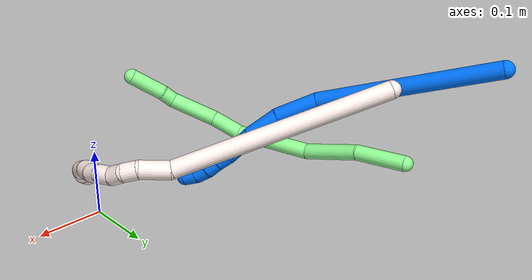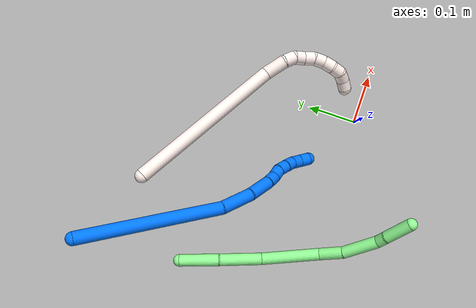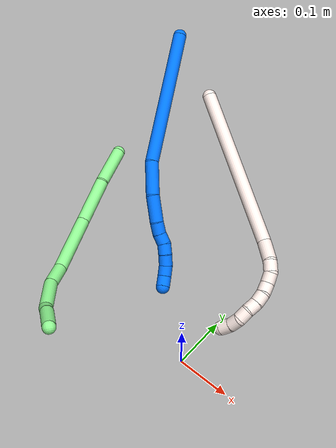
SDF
<sdf version="1.7">
 <world name="default">
  <model name="11">
   <static>0</static>
   <link name="11">
    <collision name="collision-cylinder-e_1_1_4">
     <pose>0.043744 -0.019193 -0.140649 3.00597 0.298929 2.29422</pose>
     <geometry><cylinder><radius>0.0125</radius><length>0.297079</length></cylinder></geometry>
     <surface>
      <friction><ode><mu>1.16</mu><mu2>1.16</mu2><slip1>0</slip1><slip2>0</slip2></ode></friction>
      <contact><ode><kp>1e+06</kp><kd>1</kd><max_vel>0</max_vel><min_depth>0.001</min_depth></ode></contact>
     </surface>
    </collision>
    <visual name="visual-cylinder-e_1_1_4">
     <pose>0.043744 -0.019193 -0.140649 3.00597 0.298929 2.29422</pose>
     <geometry><cylinder><radius>0.0125</radius><length>0.297079</length></cylinder></geometry>
     <material><ambient>1 0.933333 0.909804 1</ambient></material>
    </visual>
    <collision name="collision-cylinder-e_2_4_5">
     <pose>0.100006 -0.041512 -0.297328 2.94901 0.653916 2.58665</pose>
     <geometry><cylinder><radius>0.0125</radius><length>0.041157</length></cylinder></geometry>
     <surface>
      <friction><ode><mu>1.16</mu><mu2>1.16</mu2><slip1>0</slip1><slip2>0</slip2></ode></friction>
      <contact><ode><kp>1e+06</kp><kd>1</kd><max_vel>0</max_vel><min_depth>0.001</min_depth></ode></contact>
     </surface>
    </collision>
    <visual name="visual-cylinder-e_2_4_5">
     <pose>0.100006 -0.041512 -0.297328 2.94901 0.653916 2.58665</pose>
     <geometry><cylinder><radius>0.0125</radius><length>0.041157</length></cylinder></geometry>
     <material><ambient>1 0.933333 0.909804 1</ambient></material>
    </visual>
    <collision name="collision-cylinder-e_3_5_6">
     <pose>0.116516 -0.04866 -0.32228 2.71801 0.387345 1.479</pose>
     <geometry><cylinder><radius>0.0125</radius><length>0.021137</length></cylinder></geometry>
     <surface>
      <friction><ode><mu>1.16</mu><mu2>1.16</mu2><slip1>0</slip1><slip2>0</slip2></ode></friction>
      <contact><ode><kp>1e+06</kp><kd>1</kd><max_vel>0</max_vel><min_depth>0.001</min_depth></ode></contact>
     </surface>
    </collision>
    <visual name="visual-cylinder-e_3_5_6">
     <pose>0.116516 -0.04866 -0.32228 2.71801 0.387345 1.479</pose>
     <geometry><cylinder><radius>0.0125</radius><length>0.021137</length></cylinder></geometry>
     <material><ambient>1 0.933333 0.909804 1</ambient></material>
    </visual>
    <collision name="collision-cylinder-e_4_6_7">
     <pose>0.122316 -0.05999 -0.337997 2.3199 0.179249 0.40686</pose>
     <geometry><cylinder><radius>0.0125</radius><length>0.020284</length></cylinder></geometry>
     <surface>
      <friction><ode><mu>1.16</mu><mu2>1.16</mu2><slip1>0</slip1><slip2>0</slip2></ode></friction>
      <contact><ode><kp>1e+06</kp><kd>1</kd><max_vel>0</max_vel><min_depth>0.001</min_depth></ode></contact>
     </surface>
    </collision>
    <visual name="visual-cylinder-e_4_6_7">
     <pose>0.122316 -0.05999 -0.337997 2.3199 0.179249 0.40686</pose>
     <geometry><cylinder><radius>0.0125</radius><length>0.020284</length></cylinder></geometry>
     <material><ambient>1 0.933333 0.909804 1</ambient></material>
    </visual>
    <collision name="collision-cylinder-e_5_7_8">
     <pose>0.129218 -0.07414 -0.350201 2.23968 0.528529 1.01916</pose>
     <geometry><cylinder><radius>0.0125</radius><length>0.020199</length></cylinder></geometry>
     <surface>
      <friction><ode><mu>1.16</mu><mu2>1.16</mu2><slip1>0</slip1><slip2>0</slip2></ode></friction>
      <contact><ode><kp>1e+06</kp><kd>1</kd><max_vel>0</max_vel><min_depth>0.001</min_depth></ode></contact>
     </surface>
    </collision>
    <visual name="visual-cylinder-e_5_7_8">
     <pose>0.129218 -0.07414 -0.350201 2.23968 0.528529 1.01916</pose>
     <geometry><cylinder><radius>0.0125</radius><length>0.020199</length></cylinder></geometry>
     <material><ambient>1 0.933333 0.909804 1</ambient></material>
    </visual>
    <collision name="collision-cylinder-e_6_8_9">
     <pose>0.137185 -0.089695 -0.359697 2.00954 0.290264 0.452208</pose>
     <geometry><cylinder><radius>0.0125</radius><length>0.020088</length></cylinder></geometry>
     <surface>
      <friction><ode><mu>1.16</mu><mu2>1.16</mu2><slip1>0</slip1><slip2>0</slip2></ode></friction>
      <contact><ode><kp>1e+06</kp><kd>1</kd><max_vel>0</max_vel><min_depth>0.001</min_depth></ode></contact>
     </surface>
    </collision>
    <visual name="visual-cylinder-e_6_8_9">
     <pose>0.137185 -0.089695 -0.359697 2.00954 0.290264 0.452208</pose>
     <geometry><cylinder><radius>0.0125</radius><length>0.020088</length></cylinder></geometry>
     <material><ambient>1 0.933333 0.909804 1</ambient></material>
    </visual>
    <collision name="collision-cylinder-e_7_9_10">
     <pose>0.14307 -0.107778 -0.365629 1.76505 0.305371 0.369938</pose>
     <geometry><cylinder><radius>0.0125</radius><length>0.020027</length></cylinder></geometry>
     <surface>
      <friction><ode><mu>1.16</mu><mu2>1.16</mu2><slip1>0</slip1><slip2>0</slip2></ode></friction>
      <contact><ode><kp>1e+06</kp><kd>1</kd><max_vel>0</max_vel><min_depth>0.001</min_depth></ode></contact>
     </surface>
    </collision>
    <visual name="visual-cylinder-e_7_9_10">
     <pose>0.14307 -0.107778 -0.365629 1.76505 0.305371 0.369938</pose>
     <geometry><cylinder><radius>0.0125</radius><length>0.020027</length></cylinder></geometry>
     <material><ambient>1 0.933333 0.909804 1</ambient></material>
    </visual>
    <collision name="collision-cylinder-e_8_10_11">
     <pose>0.14645 -0.126705 -0.370404 1.86837 0.036939 0.04996</pose>
     <geometry><cylinder><radius>0.0125</radius><length>0.020005</length></cylinder></geometry>
     <surface>
      <friction><ode><mu>1.16</mu><mu2>1.16</mu2><slip1>0</slip1><slip2>0</slip2></ode></friction>
      <contact><ode><kp>1e+06</kp><kd>1</kd><max_vel>0</max_vel><min_depth>0.001</min_depth></ode></contact>
     </surface>
    </collision>
    <visual name="visual-cylinder-e_8_10_11">
     <pose>0.14645 -0.126705 -0.370404 1.86837 0.036939 0.04996</pose>
     <geometry><cylinder><radius>0.0125</radius><length>0.020005</length></cylinder></geometry>
     <material><ambient>1 0.933333 0.909804 1</ambient></material>
    </visual>
    <collision name="collision-cylinder-e_9_11_12">
     <pose>0.142863 -0.145375 -0.374485 1.69633 -0.406709 -0.459469</pose>
     <geometry><cylinder><radius>0.0125</radius><length>0.020005</length></cylinder></geometry>
     <surface>
      <friction><ode><mu>1.16</mu><mu2>1.16</mu2><slip1>0</slip1><slip2>0</slip2></ode></friction>
      <contact><ode><kp>1e+06</kp><kd>1</kd><max_vel>0</max_vel><min_depth>0.001</min_depth></ode></contact>
     </surface>
    </collision>
    <visual name="visual-cylinder-e_9_11_12">
     <pose>0.142863 -0.145375 -0.374485 1.69633 -0.406709 -0.459469</pose>
     <geometry><cylinder><radius>0.0125</radius><length>0.020005</length></cylinder></geometry>
     <material><ambient>1 0.933333 0.909804 1</ambient></material>
    </visual>
    <collision name="collision-cylinder-e_10_12_2">
     <pose>0.135041 -0.163645 -0.374436 1.44056 -0.396368 -0.348883</pose>
     <geometry><cylinder><radius>0.0125</radius><length>0.020019</length></cylinder></geometry>
     <surface>
      <friction><ode><mu>1.16</mu><mu2>1.16</mu2><slip1>0</slip1><slip2>0</slip2></ode></friction>
      <contact><ode><kp>1e+06</kp><kd>1</kd><max_vel>0</max_vel><min_depth>0.001</min_depth></ode></contact>
     </surface>
    </collision>
    <visual name="visual-cylinder-e_10_12_2">
     <pose>0.135041 -0.163645 -0.374436 1.44056 -0.396368 -0.348883</pose>
     <geometry><cylinder><radius>0.0125</radius><length>0.020019</length></cylinder></geometry>
     <material><ambient>1 0.933333 0.909804 1</ambient></material>
    </visual>
    <collision name="collision-sphere-2">
     <pose>0.131177 -0.172801 -0.373236 0 -0 0</pose>
     <geometry><sphere><radius>0.0125</radius></sphere></geometry>
     <surface>
      <friction><ode><mu>1.16</mu><mu2>1.16</mu2><slip1>0</slip1><slip2>0</slip2></ode></friction>
      <contact><ode><kp>1e+06</kp><kd>1</kd><max_vel>0</max_vel><min_depth>0.001</min_depth></ode></contact>
     </surface>
    </collision>
    <visual name="visual-sphere-2">
     <pose>0.131177 -0.172801 -0.373236 0 -0 0</pose>
     <geometry><sphere><radius>0.0125</radius></sphere></geometry>
     <material><ambient>1 0.933333 0.909804 1</ambient></material>
    </visual>
    <collision name="collision-sphere-12">
     <pose>0.138906 -0.15449 -0.375635 0 -0 0</pose>
     <geometry><sphere><radius>0.0125</radius></sphere></geometry>
     <surface>
      <friction><ode><mu>1.16</mu><mu2>1.16</mu2><slip1>0</slip1><slip2>0</slip2></ode></friction>
      <contact><ode><kp>1e+06</kp><kd>1</kd><max_vel>0</max_vel><min_depth>0.001</min_depth></ode></contact>
     </surface>
    </collision>
    <visual name="visual-sphere-12">
     <pose>0.138906 -0.15449 -0.375635 0 -0 0</pose>
     <geometry><sphere><radius>0.0125</radius></sphere></geometry>
     <material><ambient>1 0.933333 0.909804 1</ambient></material>
    </visual>
    <collision name="collision-sphere-11">
     <pose>0.14682 -0.136261 -0.373334 0 -0 0</pose>
     <geometry><sphere><radius>0.0125</radius></sphere></geometry>
     <surface>
      <friction><ode><mu>1.16</mu><mu2>1.16</mu2><slip1>0</slip1><slip2>0</slip2></ode></friction>
      <contact><ode><kp>1e+06</kp><kd>1</kd><max_vel>0</max_vel><min_depth>0.001</min_depth></ode></contact>
     </surface>
    </collision>
    <visual name="visual-sphere-11">
     <pose>0.14682 -0.136261 -0.373334 0 -0 0</pose>
     <geometry><sphere><radius>0.0125</radius></sphere></geometry>
     <material><ambient>1 0.933333 0.909804 1</ambient></material>
    </visual>
    <collision name="collision-sphere-10">
     <pose>0.146081 -0.117148 -0.367473 0 -0 0</pose>
     <geometry><sphere><radius>0.0125</radius></sphere></geometry>
     <surface>
      <friction><ode><mu>1.16</mu><mu2>1.16</mu2><slip1>0</slip1><slip2>0</slip2></ode></friction>
      <contact><ode><kp>1e+06</kp><kd>1</kd><max_vel>0</max_vel><min_depth>0.001</min_depth></ode></contact>
     </surface>
    </collision>
    <visual name="visual-sphere-10">
     <pose>0.146081 -0.117148 -0.367473 0 -0 0</pose>
     <geometry><sphere><radius>0.0125</radius></sphere></geometry>
     <material><ambient>1 0.933333 0.909804 1</ambient></material>
    </visual>
    <collision name="collision-sphere-9">
     <pose>0.14006 -0.098407 -0.363786 0 -0 0</pose>
     <geometry><sphere><radius>0.0125</radius></sphere></geometry>
     <surface>
      <friction><ode><mu>1.16</mu><mu2>1.16</mu2><slip1>0</slip1><slip2>0</slip2></ode></friction>
      <contact><ode><kp>1e+06</kp><kd>1</kd><max_vel>0</max_vel><min_depth>0.001</min_depth></ode></contact>
     </surface>
    </collision>
    <visual name="visual-sphere-9">
     <pose>0.14006 -0.098407 -0.363786 0 -0 0</pose>
     <geometry><sphere><radius>0.0125</radius></sphere></geometry>
     <material><ambient>1 0.933333 0.909804 1</ambient></material>
    </visual>
    <collision name="collision-sphere-4">
     <pose>0.087489 -0.038386 -0.281297 0 -0 0</pose>
     <geometry><sphere><radius>0.0125</radius></sphere></geometry>
     <surface>
      <friction><ode><mu>1.16</mu><mu2>1.16</mu2><slip1>0</slip1><slip2>0</slip2></ode></friction>
      <contact><ode><kp>1e+06</kp><kd>1</kd><max_vel>0</max_vel><min_depth>0.001</min_depth></ode></contact>
     </surface>
    </collision>
    <visual name="visual-sphere-4">
     <pose>0.087489 -0.038386 -0.281297 0 -0 0</pose>
     <geometry><sphere><radius>0.0125</radius></sphere></geometry>
     <material><ambient>1 0.933333 0.909804 1</ambient></material>
    </visual>
    <collision name="collision-sphere-1">
     <geometry><sphere><radius>0.0125</radius></sphere></geometry>
     <surface>
      <friction><ode><mu>1.16</mu><mu2>1.16</mu2><slip1>0</slip1><slip2>0</slip2></ode></friction>
      <contact><ode><kp>1e+06</kp><kd>1</kd><max_vel>0</max_vel><min_depth>0.001</min_depth></ode></contact>
     </surface>
    </collision>
    <visual name="visual-sphere-1">
     <geometry><sphere><radius>0.0125</radius></sphere></geometry>
     <material><ambient>1 0.933333 0.909804 1</ambient></material>
    </visual>
    <collision name="collision-sphere-8">
     <pose>0.13431 -0.080983 -0.355609 0 -0 0</pose>
     <geometry><sphere><radius>0.0125</radius></sphere></geometry>
     <surface>
      <friction><ode><mu>1.16</mu><mu2>1.16</mu2><slip1>0</slip1><slip2>0</slip2></ode></friction>
      <contact><ode><kp>1e+06</kp><kd>1</kd><max_vel>0</max_vel><min_depth>0.001</min_depth></ode></contact>
     </surface>
    </collision>
    <visual name="visual-sphere-8">
     <pose>0.13431 -0.080983 -0.355609 0 -0 0</pose>
     <geometry><sphere><radius>0.0125</radius></sphere></geometry>
     <material><ambient>1 0.933333 0.909804 1</ambient></material>
    </visual>
    <collision name="collision-sphere-5">
     <pose>0.112524 -0.044638 -0.31336 0 -0 0</pose>
     <geometry><sphere><radius>0.0125</radius></sphere></geometry>
     <surface>
      <friction><ode><mu>1.16</mu><mu2>1.16</mu2><slip1>0</slip1><slip2>0</slip2></ode></friction>
      <contact><ode><kp>1e+06</kp><kd>1</kd><max_vel>0</max_vel><min_depth>0.001</min_depth></ode></contact>
     </surface>
    </collision>
    <visual name="visual-sphere-5">
     <pose>0.112524 -0.044638 -0.31336 0 -0 0</pose>
     <geometry><sphere><radius>0.0125</radius></sphere></geometry>
     <material><ambient>1 0.933333 0.909804 1</ambient></material>
    </visual>
    <collision name="collision-sphere-6">
     <pose>0.120508 -0.052682 -0.331201 0 -0 0</pose>
     <geometry><sphere><radius>0.0125</radius></sphere></geometry>
     <surface>
      <friction><ode><mu>1.16</mu><mu2>1.16</mu2><slip1>0</slip1><slip2>0</slip2></ode></friction>
      <contact><ode><kp>1e+06</kp><kd>1</kd><max_vel>0</max_vel><min_depth>0.001</min_depth></ode></contact>
     </surface>
    </collision>
    <visual name="visual-sphere-6">
     <pose>0.120508 -0.052682 -0.331201 0 -0 0</pose>
     <geometry><sphere><radius>0.0125</radius></sphere></geometry>
     <material><ambient>1 0.933333 0.909804 1</ambient></material>
    </visual>
    <collision name="collision-sphere-7">
     <pose>0.124125 -0.067298 -0.344793 0 -0 0</pose>
     <geometry><sphere><radius>0.0125</radius></sphere></geometry>
     <surface>
      <friction><ode><mu>1.16</mu><mu2>1.16</mu2><slip1>0</slip1><slip2>0</slip2></ode></friction>
      <contact><ode><kp>1e+06</kp><kd>1</kd><max_vel>0</max_vel><min_depth>0.001</min_depth></ode></contact>
     </surface>
    </collision>
    <visual name="visual-sphere-7">
     <pose>0.124125 -0.067298 -0.344793 0 -0 0</pose>
     <geometry><sphere><radius>0.0125</radius></sphere></geometry>
     <material><ambient>1 0.933333 0.909804 1</ambient></material>
    </visual>
    <inertial>
     <pose>0.077555 -0.047665 -0.223416 0 -0 0</pose>
     <mass>0.5</mass>
     <inertia>
      <ixx>0.000204</ixx>
      <ixy>0</ixy>
      <ixz>0</ixz>
      <iyy>0.003078</iyy>
      <iyz>0</iyz>
      <izz>-0.000388</izz>
     </inertia>
    </inertial>
   </link>
   <pose>-0.232549 0.350739 0.2444 0.639107 -0.905803 -1.03239</pose>
  </model>
  <model name="13">
   <static>0</static>
   <link name="13">
    <collision name="collision-cylinder-e_1_1_4">
     <pose>-0.016955 -0.021077 -0.030072 2.53028 -0.432553 -1.21647</pose>
     <geometry><cylinder><radius>0.0125</radius><length>0.080896</length></cylinder></geometry>
     <surface>
      <friction><ode><mu>1.16</mu><mu2>1.16</mu2><slip1>0</slip1><slip2>0</slip2></ode></friction>
      <contact><ode><kp>1e+06</kp><kd>1</kd><max_vel>0</max_vel><min_depth>0.001</min_depth></ode></contact>
     </surface>
    </collision>
    <visual name="visual-cylinder-e_1_1_4">
     <pose>-0.016955 -0.021077 -0.030072 2.53028 -0.432553 -1.21647</pose>
     <geometry><cylinder><radius>0.0125</radius><length>0.080896</length></cylinder></geometry>
     <material><ambient>0.564706 0.984314 0.572549 1</ambient></material>
    </visual>
    <collision name="collision-cylinder-e_2_4_5">
     <pose>-0.056877 -0.056609 -0.096493 2.76308 -0.530874 -1.91396</pose>
     <geometry><cylinder><radius>0.0125</radius><length>0.090724</length></cylinder></geometry>
     <surface>
      <friction><ode><mu>1.16</mu><mu2>1.16</mu2><slip1>0</slip1><slip2>0</slip2></ode></friction>
      <contact><ode><kp>1e+06</kp><kd>1</kd><max_vel>0</max_vel><min_depth>0.001</min_depth></ode></contact>
     </surface>
    </collision>
    <visual name="visual-cylinder-e_2_4_5">
     <pose>-0.056877 -0.056609 -0.096493 2.76308 -0.530874 -1.91396</pose>
     <geometry><cylinder><radius>0.0125</radius><length>0.090724</length></cylinder></geometry>
     <material><ambient>0.564706 0.984314 0.572549 1</ambient></material>
    </visual>
    <collision name="collision-cylinder-e_3_5_6">
     <pose>-0.099521 -0.106425 -0.178602 2.4837 -0.327987 -0.902799</pose>
     <geometry><cylinder><radius>0.0125</radius><length>0.122172</length></cylinder></geometry>
     <surface>
      <friction><ode><mu>1.16</mu><mu2>1.16</mu2><slip1>0</slip1><slip2>0</slip2></ode></friction>
      <contact><ode><kp>1e+06</kp><kd>1</kd><max_vel>0</max_vel><min_depth>0.001</min_depth></ode></contact>
     </surface>
    </collision>
    <visual name="visual-cylinder-e_3_5_6">
     <pose>-0.099521 -0.106425 -0.178602 2.4837 -0.327987 -0.902799</pose>
     <geometry><cylinder><radius>0.0125</radius><length>0.122172</length></cylinder></geometry>
     <material><ambient>0.564706 0.984314 0.572549 1</ambient></material>
    </visual>
    <collision name="collision-cylinder-e_4_6_7">
     <pose>-0.123265 -0.161818 -0.239189 2.20796 -0.161711 -0.318847</pose>
     <geometry><cylinder><radius>0.0125</radius><length>0.050504</length></cylinder></geometry>
     <surface>
      <friction><ode><mu>1.16</mu><mu2>1.16</mu2><slip1>0</slip1><slip2>0</slip2></ode></friction>
      <contact><ode><kp>1e+06</kp><kd>1</kd><max_vel>0</max_vel><min_depth>0.001</min_depth></ode></contact>
     </surface>
    </collision>
    <visual name="visual-cylinder-e_4_6_7">
     <pose>-0.123265 -0.161818 -0.239189 2.20796 -0.161711 -0.318847</pose>
     <geometry><cylinder><radius>0.0125</radius><length>0.050504</length></cylinder></geometry>
     <material><ambient>0.564706 0.984314 0.572549 1</ambient></material>
    </visual>
    <collision name="collision-cylinder-e_5_7_8">
     <pose>-0.125066 -0.210726 -0.278738 2.27885 0.059491 0.129107</pose>
     <geometry><cylinder><radius>0.0125</radius><length>0.076162</length></cylinder></geometry>
     <surface>
      <friction><ode><mu>1.16</mu><mu2>1.16</mu2><slip1>0</slip1><slip2>0</slip2></ode></friction>
      <contact><ode><kp>1e+06</kp><kd>1</kd><max_vel>0</max_vel><min_depth>0.001</min_depth></ode></contact>
     </surface>
    </collision>
    <visual name="visual-cylinder-e_5_7_8">
     <pose>-0.125066 -0.210726 -0.278738 2.27885 0.059491 0.129107</pose>
     <geometry><cylinder><radius>0.0125</radius><length>0.076162</length></cylinder></geometry>
     <material><ambient>0.564706 0.984314 0.572549 1</ambient></material>
    </visual>
    <collision name="collision-cylinder-e_6_8_9">
     <pose>-0.118775 -0.248637 -0.307929 2.03011 0.380182 0.600897</pose>
     <geometry><cylinder><radius>0.0125</radius><length>0.021708</length></cylinder></geometry>
     <surface>
      <friction><ode><mu>1.16</mu><mu2>1.16</mu2><slip1>0</slip1><slip2>0</slip2></ode></friction>
      <contact><ode><kp>1e+06</kp><kd>1</kd><max_vel>0</max_vel><min_depth>0.001</min_depth></ode></contact>
     </surface>
    </collision>
    <visual name="visual-cylinder-e_6_8_9">
     <pose>-0.118775 -0.248637 -0.307929 2.03011 0.380182 0.600897</pose>
     <geometry><cylinder><radius>0.0125</radius><length>0.021708</length></cylinder></geometry>
     <material><ambient>0.564706 0.984314 0.572549 1</ambient></material>
    </visual>
    <collision name="collision-cylinder-e_7_9_2">
     <pose>-0.106363 -0.280222 -0.32844 2.18914 0.294143 0.559334</pose>
     <geometry><cylinder><radius>0.0125</radius><length>0.057834</length></cylinder></geometry>
     <surface>
      <friction><ode><mu>1.16</mu><mu2>1.16</mu2><slip1>0</slip1><slip2>0</slip2></ode></friction>
      <contact><ode><kp>1e+06</kp><kd>1</kd><max_vel>0</max_vel><min_depth>0.001</min_depth></ode></contact>
     </surface>
    </collision>
    <visual name="visual-cylinder-e_7_9_2">
     <pose>-0.106363 -0.280222 -0.32844 2.18914 0.294143 0.559334</pose>
     <geometry><cylinder><radius>0.0125</radius><length>0.057834</length></cylinder></geometry>
     <material><ambient>0.564706 0.984314 0.572549 1</ambient></material>
    </visual>
    <collision name="collision-sphere-2">
     <pose>-0.097979 -0.302773 -0.344483 0 -0 0</pose>
     <geometry><sphere><radius>0.0125</radius></sphere></geometry>
     <surface>
      <friction><ode><mu>1.16</mu><mu2>1.16</mu2><slip1>0</slip1><slip2>0</slip2></ode></friction>
      <contact><ode><kp>1e+06</kp><kd>1</kd><max_vel>0</max_vel><min_depth>0.001</min_depth></ode></contact>
     </surface>
    </collision>
    <visual name="visual-sphere-2">
     <pose>-0.097979 -0.302773 -0.344483 0 -0 0</pose>
     <geometry><sphere><radius>0.0125</radius></sphere></geometry>
     <material><ambient>0.564706 0.984314 0.572549 1</ambient></material>
    </visual>
    <collision name="collision-sphere-9">
     <pose>-0.114747 -0.257672 -0.312397 0 -0 0</pose>
     <geometry><sphere><radius>0.0125</radius></sphere></geometry>
     <surface>
      <friction><ode><mu>1.16</mu><mu2>1.16</mu2><slip1>0</slip1><slip2>0</slip2></ode></friction>
      <contact><ode><kp>1e+06</kp><kd>1</kd><max_vel>0</max_vel><min_depth>0.001</min_depth></ode></contact>
     </surface>
    </collision>
    <visual name="visual-sphere-9">
     <pose>-0.114747 -0.257672 -0.312397 0 -0 0</pose>
     <geometry><sphere><radius>0.0125</radius></sphere></geometry>
     <material><ambient>0.564706 0.984314 0.572549 1</ambient></material>
    </visual>
    <collision name="collision-sphere-4">
     <pose>-0.033911 -0.042153 -0.060144 0 -0 0</pose>
     <geometry><sphere><radius>0.0125</radius></sphere></geometry>
     <surface>
      <friction><ode><mu>1.16</mu><mu2>1.16</mu2><slip1>0</slip1><slip2>0</slip2></ode></friction>
      <contact><ode><kp>1e+06</kp><kd>1</kd><max_vel>0</max_vel><min_depth>0.001</min_depth></ode></contact>
     </surface>
    </collision>
    <visual name="visual-sphere-4">
     <pose>-0.033911 -0.042153 -0.060144 0 -0 0</pose>
     <geometry><sphere><radius>0.0125</radius></sphere></geometry>
     <material><ambient>0.564706 0.984314 0.572549 1</ambient></material>
    </visual>
    <collision name="collision-sphere-1">
     <geometry><sphere><radius>0.0125</radius></sphere></geometry>
     <surface>
      <friction><ode><mu>1.16</mu><mu2>1.16</mu2><slip1>0</slip1><slip2>0</slip2></ode></friction>
      <contact><ode><kp>1e+06</kp><kd>1</kd><max_vel>0</max_vel><min_depth>0.001</min_depth></ode></contact>
     </surface>
    </collision>
    <visual name="visual-sphere-1">
     <geometry><sphere><radius>0.0125</radius></sphere></geometry>
     <material><ambient>0.564706 0.984314 0.572549 1</ambient></material>
    </visual>
    <collision name="collision-sphere-8">
     <pose>-0.122802 -0.239603 -0.303461 0 -0 0</pose>
     <geometry><sphere><radius>0.0125</radius></sphere></geometry>
     <surface>
      <friction><ode><mu>1.16</mu><mu2>1.16</mu2><slip1>0</slip1><slip2>0</slip2></ode></friction>
      <contact><ode><kp>1e+06</kp><kd>1</kd><max_vel>0</max_vel><min_depth>0.001</min_depth></ode></contact>
     </surface>
    </collision>
    <visual name="visual-sphere-8">
     <pose>-0.122802 -0.239603 -0.303461 0 -0 0</pose>
     <geometry><sphere><radius>0.0125</radius></sphere></geometry>
     <material><ambient>0.564706 0.984314 0.572549 1</ambient></material>
    </visual>
    <collision name="collision-sphere-5">
     <pose>-0.079843 -0.071065 -0.132843 0 -0 0</pose>
     <geometry><sphere><radius>0.0125</radius></sphere></geometry>
     <surface>
      <friction><ode><mu>1.16</mu><mu2>1.16</mu2><slip1>0</slip1><slip2>0</slip2></ode></friction>
      <contact><ode><kp>1e+06</kp><kd>1</kd><max_vel>0</max_vel><min_depth>0.001</min_depth></ode></contact>
     </surface>
    </collision>
    <visual name="visual-sphere-5">
     <pose>-0.079843 -0.071065 -0.132843 0 -0 0</pose>
     <geometry><sphere><radius>0.0125</radius></sphere></geometry>
     <material><ambient>0.564706 0.984314 0.572549 1</ambient></material>
    </visual>
    <collision name="collision-sphere-6">
     <pose>-0.119199 -0.141785 -0.224362 0 -0 0</pose>
     <geometry><sphere><radius>0.0125</radius></sphere></geometry>
     <surface>
      <friction><ode><mu>1.16</mu><mu2>1.16</mu2><slip1>0</slip1><slip2>0</slip2></ode></friction>
      <contact><ode><kp>1e+06</kp><kd>1</kd><max_vel>0</max_vel><min_depth>0.001</min_depth></ode></contact>
     </surface>
    </collision>
    <visual name="visual-sphere-6">
     <pose>-0.119199 -0.141785 -0.224362 0 -0 0</pose>
     <geometry><sphere><radius>0.0125</radius></sphere></geometry>
     <material><ambient>0.564706 0.984314 0.572549 1</ambient></material>
    </visual>
    <collision name="collision-sphere-7">
     <pose>-0.127331 -0.18185 -0.254016 0 -0 0</pose>
     <geometry><sphere><radius>0.0125</radius></sphere></geometry>
     <surface>
      <friction><ode><mu>1.16</mu><mu2>1.16</mu2><slip1>0</slip1><slip2>0</slip2></ode></friction>
      <contact><ode><kp>1e+06</kp><kd>1</kd><max_vel>0</max_vel><min_depth>0.001</min_depth></ode></contact>
     </surface>
    </collision>
    <visual name="visual-sphere-7">
     <pose>-0.127331 -0.18185 -0.254016 0 -0 0</pose>
     <geometry><sphere><radius>0.0125</radius></sphere></geometry>
     <material><ambient>0.564706 0.984314 0.572549 1</ambient></material>
    </visual>
    <inertial>
     <pose>-0.086342 -0.131337 -0.183992 0 -0 0</pose>
     <mass>0.5</mass>
     <inertia>
      <ixx>-5.1e-05</ixx>
      <ixy>0</ixy>
      <ixz>0</ixz>
      <iyy>-0.000285</iyy>
      <iyz>0</iyz>
      <izz>0.000263</izz>
     </inertia>
    </inertial>
   </link>
   <pose>-0.388403 0.259741 0.044749 -1.11669 -0.352856 0.786078</pose>
  </model>
  <model name="14">
   <static>0</static>
   <link name="14">
    <collision name="collision-cylinder-e_1_1_4">
     <pose>-0.016622 -0.05222 0.120645 0.408495 -0.125769 -0.026084</pose>
     <geometry><cylinder><radius>0.0125</radius><length>0.265017</length></cylinder></geometry>
     <surface>
      <friction><ode><mu>1.16</mu><mu2>1.16</mu2><slip1>0</slip1><slip2>0</slip2></ode></friction>
      <contact><ode><kp>1e+06</kp><kd>1</kd><max_vel>0</max_vel><min_depth>0.001</min_depth></ode></contact>
     </surface>
    </collision>
    <visual name="visual-cylinder-e_1_1_4">
     <pose>-0.016622 -0.05222 0.120645 0.408495 -0.125769 -0.026084</pose>
     <geometry><cylinder><radius>0.0125</radius><length>0.265017</length></cylinder></geometry>
     <material><ambient>0 0.462745 1 1</ambient></material>
    </visual>
    <collision name="collision-cylinder-e_2_4_5">
     <pose>-0.037042 -0.123765 0.265753 0.668583 -0.121259 -0.042162</pose>
     <geometry><cylinder><radius>0.0125</radius><length>0.062809</length></cylinder></geometry>
     <surface>
      <friction><ode><mu>1.16</mu><mu2>1.16</mu2><slip1>0</slip1><slip2>0</slip2></ode></friction>
      <contact><ode><kp>1e+06</kp><kd>1</kd><max_vel>0</max_vel><min_depth>0.001</min_depth></ode></contact>
     </surface>
    </collision>
    <visual name="visual-cylinder-e_2_4_5">
     <pose>-0.037042 -0.123765 0.265753 0.668583 -0.121259 -0.042162</pose>
     <geometry><cylinder><radius>0.0125</radius><length>0.062809</length></cylinder></geometry>
     <material><ambient>0 0.462745 1 1</ambient></material>
    </visual>
    <collision name="collision-cylinder-e_3_5_6">
     <pose>-0.046615 -0.161598 0.305591 0.877595 -0.235535 -0.110939</pose>
     <geometry><cylinder><radius>0.0125</radius><length>0.049491</length></cylinder></geometry>
     <surface>
      <friction><ode><mu>1.16</mu><mu2>1.16</mu2><slip1>0</slip1><slip2>0</slip2></ode></friction>
      <contact><ode><kp>1e+06</kp><kd>1</kd><max_vel>0</max_vel><min_depth>0.001</min_depth></ode></contact>
     </surface>
    </collision>
    <visual name="visual-cylinder-e_3_5_6">
     <pose>-0.046615 -0.161598 0.305591 0.877595 -0.235535 -0.110939</pose>
     <geometry><cylinder><radius>0.0125</radius><length>0.049491</length></cylinder></geometry>
     <material><ambient>0 0.462745 1 1</ambient></material>
    </visual>
    <collision name="collision-cylinder-e_4_6_7">
     <pose>-0.055928 -0.189306 0.326516 1.02803 -0.318159 -0.180684</pose>
     <geometry><cylinder><radius>0.0125</radius><length>0.022623</length></cylinder></geometry>
     <surface>
      <friction><ode><mu>1.16</mu><mu2>1.16</mu2><slip1>0</slip1><slip2>0</slip2></ode></friction>
      <contact><ode><kp>1e+06</kp><kd>1</kd><max_vel>0</max_vel><min_depth>0.001</min_depth></ode></contact>
     </surface>
    </collision>
    <visual name="visual-cylinder-e_4_6_7">
     <pose>-0.055928 -0.189306 0.326516 1.02803 -0.318159 -0.180684</pose>
     <geometry><cylinder><radius>0.0125</radius><length>0.022623</length></cylinder></geometry>
     <material><ambient>0 0.462745 1 1</ambient></material>
    </visual>
    <collision name="collision-cylinder-e_5_7_8">
     <pose>-0.060284 -0.207573 0.336243 1.13903 -0.08163 -0.052284</pose>
     <geometry><cylinder><radius>0.0125</radius><length>0.020032</length></cylinder></geometry>
     <surface>
      <friction><ode><mu>1.16</mu><mu2>1.16</mu2><slip1>0</slip1><slip2>0</slip2></ode></friction>
      <contact><ode><kp>1e+06</kp><kd>1</kd><max_vel>0</max_vel><min_depth>0.001</min_depth></ode></contact>
     </surface>
    </collision>
    <visual name="visual-cylinder-e_5_7_8">
     <pose>-0.060284 -0.207573 0.336243 1.13903 -0.08163 -0.052284</pose>
     <geometry><cylinder><radius>0.0125</radius><length>0.020032</length></cylinder></geometry>
     <material><ambient>0 0.462745 1 1</ambient></material>
    </visual>
    <collision name="collision-cylinder-e_6_8_9">
     <pose>-0.06339 -0.223747 0.347091 0.817102 -0.230714 -0.10024</pose>
     <geometry><cylinder><radius>0.0125</radius><length>0.020026</length></cylinder></geometry>
     <surface>
      <friction><ode><mu>1.16</mu><mu2>1.16</mu2><slip1>0</slip1><slip2>0</slip2></ode></friction>
      <contact><ode><kp>1e+06</kp><kd>1</kd><max_vel>0</max_vel><min_depth>0.001</min_depth></ode></contact>
     </surface>
    </collision>
    <visual name="visual-cylinder-e_6_8_9">
     <pose>-0.06339 -0.223747 0.347091 0.817102 -0.230714 -0.10024</pose>
     <geometry><cylinder><radius>0.0125</radius><length>0.020026</length></cylinder></geometry>
     <material><ambient>0 0.462745 1 1</ambient></material>
    </visual>
    <collision name="collision-cylinder-e_7_9_10">
     <pose>-0.069075 -0.237822 0.360081 0.834155 -0.34637 -0.15471</pose>
     <geometry><cylinder><radius>0.0125</radius><length>0.020001</length></cylinder></geometry>
     <surface>
      <friction><ode><mu>1.16</mu><mu2>1.16</mu2><slip1>0</slip1><slip2>0</slip2></ode></friction>
      <contact><ode><kp>1e+06</kp><kd>1</kd><max_vel>0</max_vel><min_depth>0.001</min_depth></ode></contact>
     </surface>
    </collision>
    <visual name="visual-cylinder-e_7_9_10">
     <pose>-0.069075 -0.237822 0.360081 0.834155 -0.34637 -0.15471</pose>
     <geometry><cylinder><radius>0.0125</radius><length>0.020001</length></cylinder></geometry>
     <material><ambient>0 0.462745 1 1</ambient></material>
    </visual>
    <collision name="collision-cylinder-e_8_10_11">
     <pose>-0.075577 -0.250159 0.374244 0.600194 -0.315946 -0.098509</pose>
     <geometry><cylinder><radius>0.0125</radius><length>0.02</length></cylinder></geometry>
     <surface>
      <friction><ode><mu>1.16</mu><mu2>1.16</mu2><slip1>0</slip1><slip2>0</slip2></ode></friction>
      <contact><ode><kp>1e+06</kp><kd>1</kd><max_vel>0</max_vel><min_depth>0.001</min_depth></ode></contact>
     </surface>
    </collision>
    <visual name="visual-cylinder-e_8_10_11">
     <pose>-0.075577 -0.250159 0.374244 0.600194 -0.315946 -0.098509</pose>
     <geometry><cylinder><radius>0.0125</radius><length>0.02</length></cylinder></geometry>
     <material><ambient>0 0.462745 1 1</ambient></material>
    </visual>
    <collision name="collision-cylinder-e_9_11_2">
     <pose>-0.079799 -0.259955 0.390985 0.461832 -0.111703 -0.026288</pose>
     <geometry><cylinder><radius>0.0125</radius><length>0.02</length></cylinder></geometry>
     <surface>
      <friction><ode><mu>1.16</mu><mu2>1.16</mu2><slip1>0</slip1><slip2>0</slip2></ode></friction>
      <contact><ode><kp>1e+06</kp><kd>1</kd><max_vel>0</max_vel><min_depth>0.001</min_depth></ode></contact>
     </surface>
    </collision>
    <visual name="visual-cylinder-e_9_11_2">
     <pose>-0.079799 -0.259955 0.390985 0.461832 -0.111703 -0.026288</pose>
     <geometry><cylinder><radius>0.0125</radius><length>0.02</length></cylinder></geometry>
     <material><ambient>0 0.462745 1 1</ambient></material>
    </visual>
    <collision name="collision-sphere-2">
     <pose>-0.080914 -0.264383 0.399882 0 -0 0</pose>
     <geometry><sphere><radius>0.0125</radius></sphere></geometry>
     <surface>
      <friction><ode><mu>1.16</mu><mu2>1.16</mu2><slip1>0</slip1><slip2>0</slip2></ode></friction>
      <contact><ode><kp>1e+06</kp><kd>1</kd><max_vel>0</max_vel><min_depth>0.001</min_depth></ode></contact>
     </surface>
    </collision>
    <visual name="visual-sphere-2">
     <pose>-0.080914 -0.264383 0.399882 0 -0 0</pose>
     <geometry><sphere><radius>0.0125</radius></sphere></geometry>
     <material><ambient>0 0.462745 1 1</ambient></material>
    </visual>
    <collision name="collision-sphere-11">
     <pose>-0.078684 -0.255527 0.382088 0 -0 0</pose>
     <geometry><sphere><radius>0.0125</radius></sphere></geometry>
     <surface>
      <friction><ode><mu>1.16</mu><mu2>1.16</mu2><slip1>0</slip1><slip2>0</slip2></ode></friction>
      <contact><ode><kp>1e+06</kp><kd>1</kd><max_vel>0</max_vel><min_depth>0.001</min_depth></ode></contact>
     </surface>
    </collision>
    <visual name="visual-sphere-11">
     <pose>-0.078684 -0.255527 0.382088 0 -0 0</pose>
     <geometry><sphere><radius>0.0125</radius></sphere></geometry>
     <material><ambient>0 0.462745 1 1</ambient></material>
    </visual>
    <collision name="collision-sphere-10">
     <pose>-0.07247 -0.24479 0.366401 0 -0 0</pose>
     <geometry><sphere><radius>0.0125</radius></sphere></geometry>
     <surface>
      <friction><ode><mu>1.16</mu><mu2>1.16</mu2><slip1>0</slip1><slip2>0</slip2></ode></friction>
      <contact><ode><kp>1e+06</kp><kd>1</kd><max_vel>0</max_vel><min_depth>0.001</min_depth></ode></contact>
     </surface>
    </collision>
    <visual name="visual-sphere-10">
     <pose>-0.07247 -0.24479 0.366401 0 -0 0</pose>
     <geometry><sphere><radius>0.0125</radius></sphere></geometry>
     <material><ambient>0 0.462745 1 1</ambient></material>
    </visual>
    <collision name="collision-sphere-9">
     <pose>-0.06568 -0.230855 0.353762 0 -0 0</pose>
     <geometry><sphere><radius>0.0125</radius></sphere></geometry>
     <surface>
      <friction><ode><mu>1.16</mu><mu2>1.16</mu2><slip1>0</slip1><slip2>0</slip2></ode></friction>
      <contact><ode><kp>1e+06</kp><kd>1</kd><max_vel>0</max_vel><min_depth>0.001</min_depth></ode></contact>
     </surface>
    </collision>
    <visual name="visual-sphere-9">
     <pose>-0.06568 -0.230855 0.353762 0 -0 0</pose>
     <geometry><sphere><radius>0.0125</radius></sphere></geometry>
     <material><ambient>0 0.462745 1 1</ambient></material>
    </visual>
    <collision name="collision-sphere-4">
     <pose>-0.033243 -0.104441 0.24129 0 -0 0</pose>
     <geometry><sphere><radius>0.0125</radius></sphere></geometry>
     <surface>
      <friction><ode><mu>1.16</mu><mu2>1.16</mu2><slip1>0</slip1><slip2>0</slip2></ode></friction>
      <contact><ode><kp>1e+06</kp><kd>1</kd><max_vel>0</max_vel><min_depth>0.001</min_depth></ode></contact>
     </surface>
    </collision>
    <visual name="visual-sphere-4">
     <pose>-0.033243 -0.104441 0.24129 0 -0 0</pose>
     <geometry><sphere><radius>0.0125</radius></sphere></geometry>
     <material><ambient>0 0.462745 1 1</ambient></material>
    </visual>
    <collision name="collision-sphere-1">
     <geometry><sphere><radius>0.0125</radius></sphere></geometry>
     <surface>
      <friction><ode><mu>1.16</mu><mu2>1.16</mu2><slip1>0</slip1><slip2>0</slip2></ode></friction>
      <contact><ode><kp>1e+06</kp><kd>1</kd><max_vel>0</max_vel><min_depth>0.001</min_depth></ode></contact>
     </surface>
    </collision>
    <visual name="visual-sphere-1">
     <geometry><sphere><radius>0.0125</radius></sphere></geometry>
     <material><ambient>0 0.462745 1 1</ambient></material>
    </visual>
    <collision name="collision-sphere-8">
     <pose>-0.0611 -0.216639 0.34042 0 -0 0</pose>
     <geometry><sphere><radius>0.0125</radius></sphere></geometry>
     <surface>
      <friction><ode><mu>1.16</mu><mu2>1.16</mu2><slip1>0</slip1><slip2>0</slip2></ode></friction>
      <contact><ode><kp>1e+06</kp><kd>1</kd><max_vel>0</max_vel><min_depth>0.001</min_depth></ode></contact>
     </surface>
    </collision>
    <visual name="visual-sphere-8">
     <pose>-0.0611 -0.216639 0.34042 0 -0 0</pose>
     <geometry><sphere><radius>0.0125</radius></sphere></geometry>
     <material><ambient>0 0.462745 1 1</ambient></material>
    </visual>
    <collision name="collision-sphere-5">
     <pose>-0.040841 -0.143089 0.290215 0 -0 0</pose>
     <geometry><sphere><radius>0.0125</radius></sphere></geometry>
     <surface>
      <friction><ode><mu>1.16</mu><mu2>1.16</mu2><slip1>0</slip1><slip2>0</slip2></ode></friction>
      <contact><ode><kp>1e+06</kp><kd>1</kd><max_vel>0</max_vel><min_depth>0.001</min_depth></ode></contact>
     </surface>
    </collision>
    <visual name="visual-sphere-5">
     <pose>-0.040841 -0.143089 0.290215 0 -0 0</pose>
     <geometry><sphere><radius>0.0125</radius></sphere></geometry>
     <material><ambient>0 0.462745 1 1</ambient></material>
    </visual>
    <collision name="collision-sphere-6">
     <pose>-0.05239 -0.180107 0.320967 0 -0 0</pose>
     <geometry><sphere><radius>0.0125</radius></sphere></geometry>
     <surface>
      <friction><ode><mu>1.16</mu><mu2>1.16</mu2><slip1>0</slip1><slip2>0</slip2></ode></friction>
      <contact><ode><kp>1e+06</kp><kd>1</kd><max_vel>0</max_vel><min_depth>0.001</min_depth></ode></contact>
     </surface>
    </collision>
    <visual name="visual-sphere-6">
     <pose>-0.05239 -0.180107 0.320967 0 -0 0</pose>
     <geometry><sphere><radius>0.0125</radius></sphere></geometry>
     <material><ambient>0 0.462745 1 1</ambient></material>
    </visual>
    <collision name="collision-sphere-7">
     <pose>-0.059467 -0.198506 0.332065 0 -0 0</pose>
     <geometry><sphere><radius>0.0125</radius></sphere></geometry>
     <surface>
      <friction><ode><mu>1.16</mu><mu2>1.16</mu2><slip1>0</slip1><slip2>0</slip2></ode></friction>
      <contact><ode><kp>1e+06</kp><kd>1</kd><max_vel>0</max_vel><min_depth>0.001</min_depth></ode></contact>
     </surface>
    </collision>
    <visual name="visual-sphere-7">
     <pose>-0.059467 -0.198506 0.332065 0 -0 0</pose>
     <geometry><sphere><radius>0.0125</radius></sphere></geometry>
     <material><ambient>0 0.462745 1 1</ambient></material>
    </visual>
    <inertial>
     <pose>-0.03454 -0.114982 0.214738 0 -0 0</pose>
     <mass>0.5</mass>
     <inertia>
      <ixx>0.001542</ixx>
      <ixy>0</ixy>
      <ixz>0</ixz>
      <iyy>0.001403</iyy>
      <iyz>0</iyz>
      <izz>0.00088</izz>
     </inertia>
    </inertial>
   </link>
   <pose>-0.368798 0.426467 0.25755 1.54813 -0.991277 0.241767</pose>
  </model>
 </world>
</sdf>
